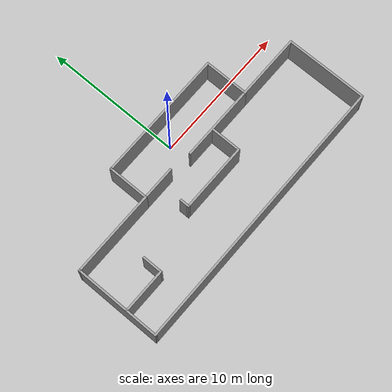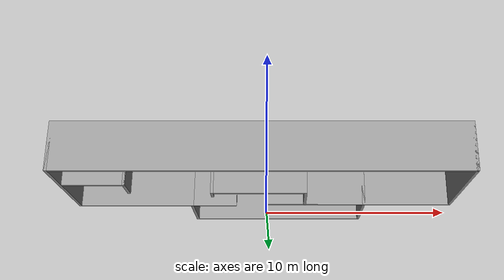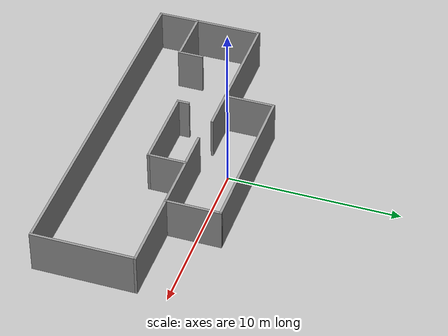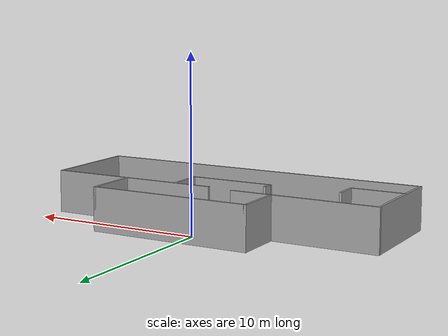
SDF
<?xml version='1.0'?>
<sdf version='1.6'>
  <model name='Untitled'>
    <pose frame=''>-0.06 -3.095 0 0 -0 0</pose>
    <link name='Wall_10'>
      <collision name='Wall_10_Collision'>
        <geometry>
          <box>
            <size>2.5 0.15 2.5</size>
          </box>
        </geometry>
        <pose frame=''>0 0 1.25 0 -0 0</pose>
      </collision>
      <visual name='Wall_10_Visual'>
        <pose frame=''>0 0 1.25 0 -0 0</pose>
        <geometry>
          <box>
            <size>2.5 0.15 2.5</size>
          </box>
        </geometry>
        <material>
          <script>
            <uri>file://media/materials/scripts/gazebo.material</uri>
            <name>Gazebo/Grey</name>
          </script>
          <ambient>1 1 1 1</ambient>
        </material>
        <meta>
          <layer>0</layer>
        </meta>
      </visual>
      <pose frame=''>-2.775 1.625 0 0 -0 0</pose>
    </link>
    <link name='Wall_12'>
      <collision name='Wall_12_Collision'>
        <geometry>
          <box>
            <size>2.25 0.15 2.5</size>
          </box>
        </geometry>
        <pose frame=''>0 0 1.25 0 -0 0</pose>
      </collision>
      <visual name='Wall_12_Visual'>
        <pose frame=''>0 0 1.25 0 -0 0</pose>
        <geometry>
          <box>
            <size>2.25 0.15 2.5</size>
          </box>
        </geometry>
        <material>
          <script>
            <uri>file://media/materials/scripts/gazebo.material</uri>
            <name>Gazebo/Grey</name>
          </script>
          <ambient>1 1 1 1</ambient>
        </material>
        <meta>
          <layer>0</layer>
        </meta>
      </visual>
      <pose frame=''>2.178 0.2685 0 0 0 -1.5708</pose>
    </link>
    <link name='Wall_13'>
      <collision name='Wall_13_Collision'>
        <geometry>
          <box>
            <size>5 0.15 2.5</size>
          </box>
        </geometry>
        <pose frame=''>0 0 1.25 0 -0 0</pose>
      </collision>
      <visual name='Wall_13_Visual'>
        <pose frame=''>0 0 1.25 0 -0 0</pose>
        <geometry>
          <box>
            <size>5 0.15 2.5</size>
          </box>
        </geometry>
        <material>
          <script>
            <uri>file://media/materials/scripts/gazebo.material</uri>
            <name>Gazebo/Grey</name>
          </script>
          <ambient>1 1 1 1</ambient>
        </material>
        <meta>
          <layer>0</layer>
        </meta>
      </visual>
      <pose frame=''>-0.247 -0.7815 0 0 -0 3.14159</pose>
    </link>
    <link name='Wall_14'>
      <collision name='Wall_14_Collision'>
        <geometry>
          <box>
            <size>0.75 0.15 2.5</size>
          </box>
        </geometry>
        <pose frame=''>0 0 1.25 0 -0 0</pose>
      </collision>
      <visual name='Wall_14_Visual'>
        <pose frame=''>0 0 1.25 0 -0 0</pose>
        <geometry>
          <box>
            <size>0.75 0.15 2.5</size>
          </box>
        </geometry>
        <material>
          <script>
            <uri>file://media/materials/scripts/gazebo.material</uri>
            <name>Gazebo/Grey</name>
          </script>
          <ambient>1 1 1 1</ambient>
        </material>
        <meta>
          <layer>0</layer>
        </meta>
      </visual>
      <pose frame=''>-2.672 -0.4815 0 0 -0 1.5708</pose>
    </link>
    <link name='Wall_16'>
      <collision name='Wall_16_Collision'>
        <geometry>
          <box>
            <size>6.25 0.15 2.5</size>
          </box>
        </geometry>
        <pose frame=''>0 0 1.25 0 -0 0</pose>
      </collision>
      <visual name='Wall_16_Visual'>
        <pose frame=''>0 0 1.25 0 -0 0</pose>
        <geometry>
          <box>
            <size>6.25 0.15 2.5</size>
          </box>
        </geometry>
        <material>
          <script>
            <uri>file://media/materials/scripts/gazebo.material</uri>
            <name>Gazebo/Grey</name>
          </script>
          <ambient>1 1 1 1</ambient>
        </material>
        <meta>
          <layer>0</layer>
        </meta>
      </visual>
      <pose frame=''>-7 1.625 0 0 -0 3.14159</pose>
    </link>
    <link name='Wall_18'>
      <collision name='Wall_18_Collision'>
        <geometry>
          <box>
            <size>6.25 0.15 2.5</size>
          </box>
        </geometry>
        <pose frame=''>0 0 1.25 0 -0 0</pose>
      </collision>
      <visual name='Wall_18_Visual'>
        <pose frame=''>0 0 1.25 0 -0 0</pose>
        <geometry>
          <box>
            <size>6.25 0.15 2.5</size>
          </box>
        </geometry>
        <material>
          <script>
            <uri>file://media/materials/scripts/gazebo.material</uri>
            <name>Gazebo/Grey</name>
          </script>
          <ambient>1 1 1 1</ambient>
        </material>
        <meta>
          <layer>0</layer>
        </meta>
      </visual>
      <pose frame=''>-10.05 -1.425 0 0 0 -1.5708</pose>
    </link>
    <link name='Wall_19'>
      <collision name='Wall_19_Collision'>
        <geometry>
          <box>
            <size>20.25 0.15 2.5</size>
          </box>
        </geometry>
        <pose frame=''>0 0 1.25 0 -0 0</pose>
      </collision>
      <visual name='Wall_19_Visual'>
        <pose frame=''>0 0 1.25 0 -0 0</pose>
        <geometry>
          <box>
            <size>20.25 0.15 2.5</size>
          </box>
        </geometry>
        <material>
          <script>
            <uri>file://media/materials/scripts/gazebo.material</uri>
            <name>Gazebo/Grey</name>
          </script>
          <ambient>1 1 1 1</ambient>
        </material>
        <meta>
          <layer>0</layer>
        </meta>
      </visual>
      <pose frame=''>0 -4.475 0 0 -0 0</pose>
    </link>
    <link name='Wall_20'>
      <collision name='Wall_20_Collision'>
        <geometry>
          <box>
            <size>6 0.15 2.5</size>
          </box>
        </geometry>
        <pose frame=''>0 0 1.25 0 -0 0</pose>
      </collision>
      <visual name='Wall_20_Visual'>
        <pose frame=''>0 0 1.25 0 -0 0</pose>
        <geometry>
          <box>
            <size>6 0.15 2.5</size>
          </box>
        </geometry>
        <material>
          <script>
            <uri>file://media/materials/scripts/gazebo.material</uri>
            <name>Gazebo/Grey</name>
          </script>
          <ambient>1 1 1 1</ambient>
        </material>
        <meta>
          <layer>0</layer>
        </meta>
      </visual>
      <pose frame=''>10.05 -1.55 0 0 -0 1.5708</pose>
    </link>
    <link name='Wall_21'>
      <collision name='Wall_21_Collision'>
        <geometry>
          <box>
            <size>4.8 0.15 2.5</size>
          </box>
        </geometry>
        <pose frame=''>0 0 1.25 0 -0 0</pose>
      </collision>
      <visual name='Wall_21_Visual'>
        <pose frame=''>0 0 1.25 0 -0 0</pose>
        <geometry>
          <box>
            <size>4.8 0.15 2.5</size>
          </box>
        </geometry>
        <material>
          <script>
            <uri>file://media/materials/scripts/gazebo.material</uri>
            <name>Gazebo/Grey</name>
          </script>
          <ambient>1 1 1 1</ambient>
        </material>
        <meta>
          <layer>0</layer>
        </meta>
      </visual>
      <pose frame=''>7.725 1.375 0 0 0 -3.14159</pose>
    </link>
    <link name='Wall_26'>
      <collision name='Wall_26_Collision'>
        <geometry>
          <box>
            <size>3.25 0.15 2.5</size>
          </box>
        </geometry>
        <pose frame=''>0 0 1.25 0 -0 0</pose>
      </collision>
      <visual name='Wall_26_Visual'>
        <pose frame=''>0 0 1.25 0 -0 0</pose>
        <geometry>
          <box>
            <size>3.25 0.15 2.5</size>
          </box>
        </geometry>
        <material>
          <script>
            <uri>file://media/materials/scripts/gazebo.material</uri>
            <name>Gazebo/Grey</name>
          </script>
          <ambient>1 1 1 1</ambient>
        </material>
        <meta>
          <layer>0</layer>
        </meta>
      </visual>
      <pose frame=''>-8.45799 -2.1894 0 0 -0 0</pose>
    </link>
    <link name='Wall_27'>
      <collision name='Wall_27_Collision'>
        <geometry>
          <box>
            <size>1.5 0.15 2.5</size>
          </box>
        </geometry>
        <pose frame=''>0 0 1.25 0 -0 0</pose>
      </collision>
      <visual name='Wall_27_Visual'>
        <pose frame=''>0 0 1.25 0 -0 0</pose>
        <geometry>
          <box>
            <size>1.5 0.15 2.5</size>
          </box>
        </geometry>
        <material>
          <script>
            <uri>file://media/materials/scripts/gazebo.material</uri>
            <name>Gazebo/Grey</name>
          </script>
          <ambient>1 1 1 1</ambient>
        </material>
        <meta>
          <layer>0</layer>
        </meta>
      </visual>
      <pose frame=''>-6.90799 -1.5144 0 0 -0 1.5708</pose>
    </link>
    <link name='Wall_3'>
      <collision name='Wall_3_Collision'>
        <geometry>
          <box>
            <size>3 0.15 2.5</size>
          </box>
        </geometry>
        <pose frame=''>0 0 1.25 0 -0 0</pose>
      </collision>
      <visual name='Wall_3_Visual'>
        <pose frame=''>0 0 1.25 0 -0 0</pose>
        <geometry>
          <box>
            <size>3 0.15 2.5</size>
          </box>
        </geometry>
        <material>
          <script>
            <uri>file://media/materials/scripts/gazebo.material</uri>
            <name>Gazebo/Grey</name>
          </script>
          <ambient>1 1 1 1</ambient>
        </material>
        <meta>
          <layer>0</layer>
        </meta>
      </visual>
      <pose frame=''>-3.95 3.05 0 0 -0 1.5708</pose>
    </link>
    <link name='Wall_4'>
      <collision name='Wall_4_Collision'>
        <geometry>
          <box>
            <size>9.5 0.15 2.5</size>
          </box>
        </geometry>
        <pose frame=''>0 0 1.25 0 -0 0</pose>
      </collision>
      <visual name='Wall_4_Visual'>
        <pose frame=''>0 0 1.25 0 -0 0</pose>
        <geometry>
          <box>
            <size>9.5 0.15 2.5</size>
          </box>
        </geometry>
        <material>
          <script>
            <uri>file://media/materials/scripts/gazebo.material</uri>
            <name>Gazebo/Grey</name>
          </script>
          <ambient>1 1 1 1</ambient>
        </material>
        <meta>
          <layer>0</layer>
        </meta>
      </visual>
      <pose frame=''>0.725 4.475 0 0 -0 0</pose>
    </link>
    <link name='Wall_5'>
      <collision name='Wall_5_Collision'>
        <geometry>
          <box>
            <size>3.25 0.15 2.5</size>
          </box>
        </geometry>
        <pose frame=''>0 0 1.25 0 -0 0</pose>
      </collision>
      <visual name='Wall_5_Visual'>
        <pose frame=''>0 0 1.25 0 -0 0</pose>
        <geometry>
          <box>
            <size>3.25 0.15 2.5</size>
          </box>
        </geometry>
        <material>
          <script>
            <uri>file://media/materials/scripts/gazebo.material</uri>
            <name>Gazebo/Grey</name>
          </script>
          <ambient>1 1 1 1</ambient>
        </material>
        <meta>
          <layer>0</layer>
        </meta>
      </visual>
      <pose frame=''>5.4 2.925 0 0 0 -1.5708</pose>
    </link>
    <link name='Wall_6'>
      <collision name='Wall_6_Collision'>
        <geometry>
          <box>
            <size>5.5 0.15 2.5</size>
          </box>
        </geometry>
        <pose frame=''>0 0 1.25 0 -0 0</pose>
      </collision>
      <visual name='Wall_6_Visual'>
        <pose frame=''>0 0 1.25 0 -0 0</pose>
        <geometry>
          <box>
            <size>5.5 0.15 2.5</size>
          </box>
        </geometry>
        <material>
          <script>
            <uri>file://media/materials/scripts/gazebo.material</uri>
            <name>Gazebo/Grey</name>
          </script>
          <ambient>1 1 1 1</ambient>
        </material>
        <meta>
          <layer>0</layer>
        </meta>
      </visual>
      <pose frame=''>2.725 1.375 0 0 -0 3.14159</pose>
    </link>
    <static>1</static>
  </model>
</sdf>
